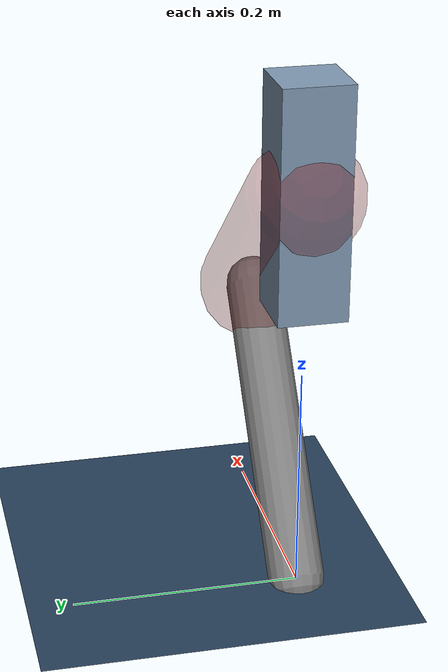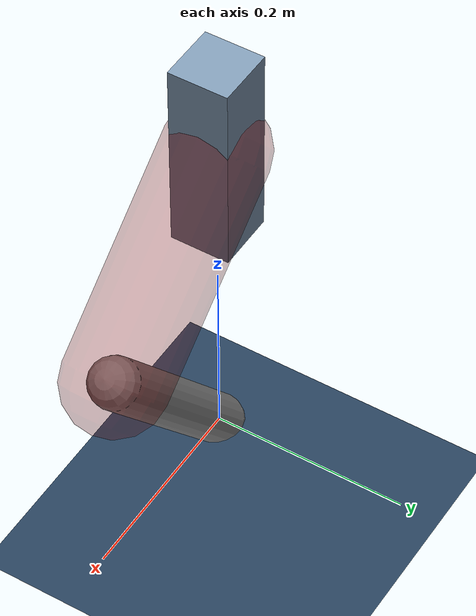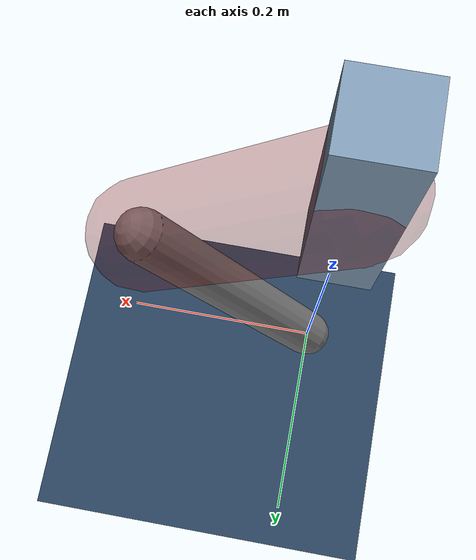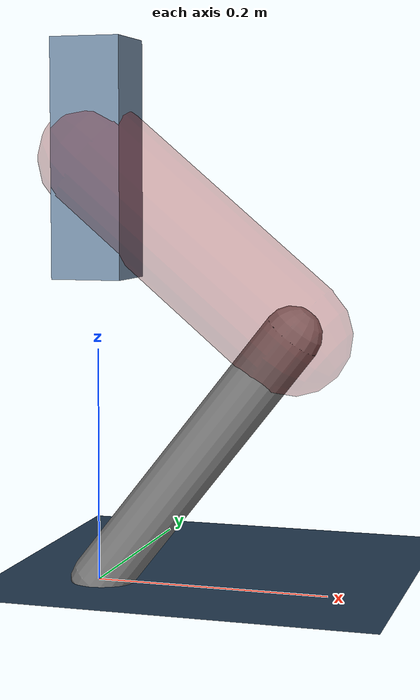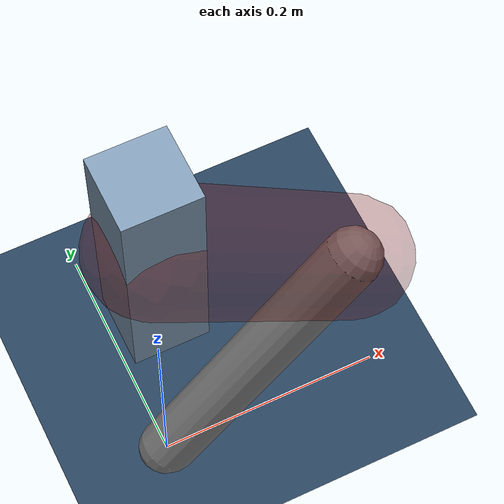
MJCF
<mujoco model="Hopper2D">
	<compiler inertiafromgeom="true" angle="radian" />
	<option timestep="0.001" integrator="implicit" cone="elliptic" solver="Newton" tolerance="1e-10" />

	<default>
		<geom contype="1" conaffinity="1" condim="3" friction="2 0.005 0.0001" solref="0.005 1" />
		<joint limited="true" damping="0.1" />
	</default>

	<asset>
		<texture name="skybox" type="skybox" builtin="gradient" rgb1=".4 .6 .8" rgb2="0 0 0" width="800" height="800" />
		<texture name="grid" type="2d" builtin="checker" rgb1=".1 .2 .3" rgb2=".2 .3 .4" width="300" height="300" mark="edge" markrgb=".2 .3 .4" />
		<material name="ground" texture="grid" texrepeat="1 1" texuniform="true" reflectance="0.1" />
		<material name="leg" rgba="0.5 0.6 0.7 1" />
	</asset>

	<worldbody>

		<geom name="floor" type="plane" size="5 5 0.25" material="ground" />

		<light directional="false" diffuse="0.8 0.8 0.8" specular="0.3 0.3 0.3" pos="0 0 2" dir="0 0 -1" />
		<light mode="targetbodycom" target="base" directional="false" diffuse="0.8 0.8 0.8" specular="0.3 0.3 0.3" pos="0 0 2" dir="0 0 -1" />

		<camera name="fixed" pos="0 -2 1" xyaxes="1 0 0 0 0 1" />
		<camera name="tracking" mode="trackcom" pos="0 -3 1" />

		<body name="root" pos="0 0 0.3602648128286833">
			<joint name="slide_x" type="slide" axis="1 0 0" range="-100 100" />
			<joint name="slide_z" type="slide" axis="0 0 1" range="0 10" />

			<body name="base" pos="0 0 0">
				<geom name="torso" type="box" size="0.03 0.03 0.1" mass="2.004" material="leg" />

				<body name="link1" pos="0 0 0" euler="0 0.7071169827046042 0">
					<joint type="hinge" axis="0 -1 0" pos="0 0 0" name="hinge1" limited="true" range="-3.14 3.14" stiffness="0" damping="0.1" />
					<geom name="thigh" type="capsule" fromto="0 0 0 0.22243020489191057 0 0" size="0.05" rgba="0.5 0 0 0.3" mass="0.7858185327189674" />

					<body name="link2" pos="0.22243020489191057 0 0" euler="0 1.5284176583471953 0">
						<joint type="hinge" axis="0 -1 0" pos="0 0 0" name="hinge2" limited="true" range="-3.14 3.14" stiffness="0" damping="0.1" />
						<geom name="shank" type="capsule" fromto="0 0 0 0.27413311793646017 0 0" size="0.025" mass="0.4623064943491681" />

					</body>
				</body>
			</body>
		</body>
	</worldbody>

	<actuator>
		<motor name="torque1" joint="hinge1" ctrlrange="-22.231744001494473 22.231744001494473" ctrllimited="true" gear="1" />
		<motor name="torque2" joint="hinge2" ctrlrange="-71.82203021269697 71.82203021269697" ctrllimited="true" gear="1" />
	</actuator>
</mujoco>
